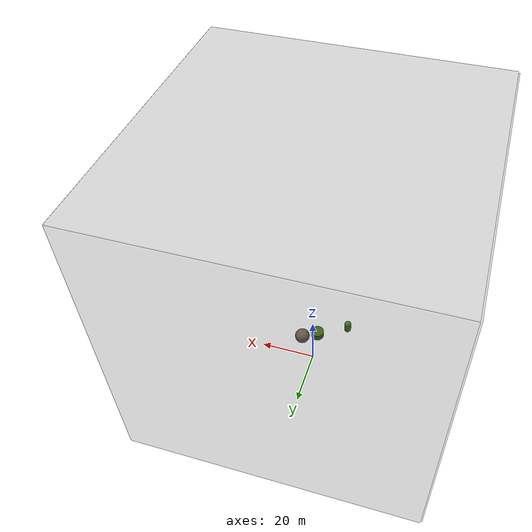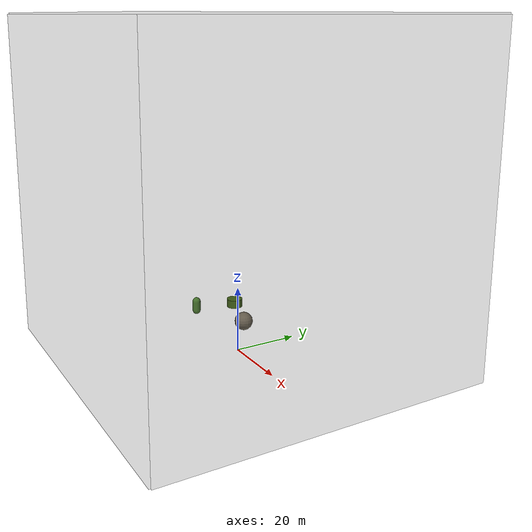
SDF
<!-- seed: 1719225684 -->
<sdf version='1.11'>
  <world name='world_0'>
    <gravity>0 0 -9.8066499999999994</gravity>
    <magnetic_field>5.5644999999999998e-06 2.2875799999999999e-05 -4.2388400000000002e-05</magnetic_field>
    <wind>
      <linear_velocity>10 4 4</linear_velocity>
    </wind>
    <physics name='physics' default='false' type='bullet'>
      <max_step_size>0.63171287832326173</max_step_size>
      <real_time_factor>2.3065947130988063</real_time_factor>
      <max_contacts>88</max_contacts>
    </physics>
    <model name='model_0'>
      <static>false</static>
      <self_collide>false</self_collide>
      <allow_auto_disable>true</allow_auto_disable>
      <enable_wind>true</enable_wind>
      <pose>-1.9860748776587549 -0.34138401124652518 5.4283076475673386 0 0 0</pose>
      <link name='link_2766'>
        <pose>-9.238951667904761 -8.1078865798224342 6.8802739759791116 0 0 0</pose>
        <inertial>
          <pose>0 0 0 0 0 0</pose>
          <mass>1</mass>
          <inertia>
            <ixx>1</ixx>
            <ixy>0</ixy>
            <ixz>0</ixz>
            <iyy>1</iyy>
            <iyz>0</iyz>
            <izz>1</izz>
          </inertia>
        </inertial>
        <enable_wind>false</enable_wind>
        <collision name='collision_2766'>
          <pose>0 0 0 0 0 0</pose>
          <geometry>
            <capsule>
              <radius>1.2118621030730345</radius>
              <length>2.8938118178007315</length>
            </capsule>
          </geometry>
          <surface>
            <contact>
              <collide_bitmask>255</collide_bitmask>
            </contact>
            <friction>
              <ode>
                <mu>1</mu>
                <mu2>1</mu2>
                <slip1>0</slip1>
                <slip2>0</slip2>
                <fdir1>0 0 0</fdir1>
              </ode>
            </friction>
          </surface>
        </collision>
        <visual name='visual_2766'>
          <pose>0 0 0 0 0 0</pose>
          <geometry>
            <capsule>
              <radius>1.2118621030730345</radius>
              <length>2.8938118178007315</length>
            </capsule>
          </geometry>
          <cast_shadows>true</cast_shadows>
          <laser_retro>0</laser_retro>
          <transparency>0</transparency>
          <visibility_flags>4294967295</visibility_flags>
          <material>
            <ambient>0.311028212 0.522084713 0.183882594 1</ambient>
            <diffuse>0.311028212 0.522084713 0.183882594 1</diffuse>
            <specular>0 0 0 1</specular>
            <emissive>0 0 0 1</emissive>
            <render_order>0</render_order>
            <lighting>true</lighting>
            <double_sided>false</double_sided>
            <shader type='pixel'/>
          </material>
        </visual>
      </link>
      <link name='link_2767'>
        <pose>0.28534835435404027 0.16844346873942939 9.6477831879669544 0 0 0</pose>
        <inertial>
          <pose>0 0 0 0 0 0</pose>
          <mass>1</mass>
          <inertia>
            <ixx>1</ixx>
            <ixy>0</ixy>
            <ixz>0</ixz>
            <iyy>1</iyy>
            <iyz>0</iyz>
            <izz>1</izz>
          </inertia>
        </inertial>
        <enable_wind>false</enable_wind>
        <collision name='collision_2767'>
          <pose>0 0 0 0 0 0</pose>
          <geometry>
            <cylinder>
              <radius>2.3256684102771641</radius>
              <length>2.3671492266296728</length>
            </cylinder>
          </geometry>
          <surface>
            <contact>
              <collide_bitmask>255</collide_bitmask>
            </contact>
            <friction>
              <ode>
                <mu>1</mu>
                <mu2>1</mu2>
                <slip1>0</slip1>
                <slip2>0</slip2>
                <fdir1>0 0 0</fdir1>
              </ode>
            </friction>
          </surface>
        </collision>
        <visual name='visual_2767'>
          <pose>0 0 0 0 0 0</pose>
          <geometry>
            <cylinder>
              <radius>2.3256684102771641</radius>
              <length>2.3671492266296728</length>
            </cylinder>
          </geometry>
          <cast_shadows>true</cast_shadows>
          <laser_retro>0</laser_retro>
          <transparency>0</transparency>
          <visibility_flags>4294967295</visibility_flags>
          <material>
            <ambient>0.280946463 0.426142454 0.0833514258 1</ambient>
            <diffuse>0.280946463 0.426142454 0.0833514258 1</diffuse>
            <specular>0 0 0 1</specular>
            <emissive>0 0 0 1</emissive>
            <render_order>0</render_order>
            <lighting>true</lighting>
            <double_sided>false</double_sided>
            <shader type='pixel'/>
          </material>
        </visual>
      </link>
      <link name='link_2768'>
        <pose>6.1698349107426189 0.0064248891464284696 5.7057387426074619 0 0 0</pose>
        <inertial>
          <pose>0 0 0 0 0 0</pose>
          <mass>1</mass>
          <inertia>
            <ixx>1</ixx>
            <ixy>0</ixy>
            <ixz>0</ixz>
            <iyy>1</iyy>
            <iyz>0</iyz>
            <izz>1</izz>
          </inertia>
        </inertial>
        <enable_wind>false</enable_wind>
        <collision name='collision_2768'>
          <pose>0 0 0 0 0 0</pose>
          <geometry>
            <sphere>
              <radius>2.6939385654149035</radius>
            </sphere>
          </geometry>
          <surface>
            <contact>
              <collide_bitmask>255</collide_bitmask>
            </contact>
            <friction>
              <ode>
                <mu>1</mu>
                <mu2>1</mu2>
                <slip1>0</slip1>
                <slip2>0</slip2>
                <fdir1>0 0 0</fdir1>
              </ode>
            </friction>
          </surface>
        </collision>
        <visual name='visual_2768'>
          <pose>0 0 0 0 0 0</pose>
          <geometry>
            <sphere>
              <radius>2.6939385654149035</radius>
            </sphere>
          </geometry>
          <cast_shadows>true</cast_shadows>
          <laser_retro>0</laser_retro>
          <transparency>0</transparency>
          <visibility_flags>4294967295</visibility_flags>
          <material>
            <ambient>0.464019477 0.422752708 0.349597961 1</ambient>
            <diffuse>0.464019477 0.422752708 0.349597961 1</diffuse>
            <specular>0 0 0 1</specular>
            <emissive>0 0 0 1</emissive>
            <render_order>0</render_order>
            <lighting>true</lighting>
            <double_sided>false</double_sided>
            <shader type='pixel'/>
          </material>
        </visual>
      </link>
      <joint name='joint_1844' type='screw'>
        <pose>0 0 0 0 0 0</pose>
        <parent>link_2767</parent>
        <child>link_2766</child>
        <axis>
          <xyz>0.74499642748947348 0.53419645163693952 0.39951780196434866</xyz>
          <limit>
            <lower>-inf</lower>
            <upper>inf</upper>
            <effort>inf</effort>
            <velocity>3.2429417984630704</velocity>
            <stiffness>100000000</stiffness>
            <dissipation>1</dissipation>
          </limit>
          <dynamics>
            <spring_reference>0</spring_reference>
            <spring_stiffness>0</spring_stiffness>
            <damping>0</damping>
            <friction>0</friction>
          </dynamics>
        </axis>
        <axis2>
          <xyz>0.67264378201400432 0.73805340211843928 0.053174412448976582</xyz>
          <limit>
            <lower>-inf</lower>
            <upper>inf</upper>
            <effort>inf</effort>
            <velocity>1.3873200382109274</velocity>
            <stiffness>100000000</stiffness>
            <dissipation>1</dissipation>
          </limit>
          <dynamics>
            <spring_reference>0</spring_reference>
            <spring_stiffness>0</spring_stiffness>
            <damping>0</damping>
            <friction>0</friction>
          </dynamics>
        </axis2>
        <thread_pitch>-6.2831853071795862</thread_pitch>
      </joint>
      <joint name='joint_1845' type='ball'>
        <pose>0 0 0 0 0 0</pose>
        <parent>link_2768</parent>
        <child>link_2767</child>
        <axis>
          <xyz>0.43246419016052196 0.54228925276299267 0.72034511906901888</xyz>
          <limit>
            <lower>-inf</lower>
            <upper>inf</upper>
            <effort>inf</effort>
            <velocity>3.3753092180743982</velocity>
            <stiffness>100000000</stiffness>
            <dissipation>1</dissipation>
          </limit>
          <dynamics>
            <spring_reference>0</spring_reference>
            <spring_stiffness>0</spring_stiffness>
            <damping>0</damping>
            <friction>0</friction>
          </dynamics>
        </axis>
        <axis2>
          <xyz>0.13526677785343769 0.97782397377773644 0.15988488081949834</xyz>
          <limit>
            <lower>-inf</lower>
            <upper>inf</upper>
            <effort>inf</effort>
            <velocity>9.9132412389652877</velocity>
            <stiffness>100000000</stiffness>
            <dissipation>1</dissipation>
          </limit>
          <dynamics>
            <spring_reference>0</spring_reference>
            <spring_stiffness>0</spring_stiffness>
            <damping>0</damping>
            <friction>0</friction>
          </dynamics>
        </axis2>
      </joint>
    </model>
    <model name='ground_model'>
      <static>true</static>
      <self_collide>false</self_collide>
      <allow_auto_disable>true</allow_auto_disable>
      <enable_wind>false</enable_wind>
      <pose>0 0 0 0 0 0</pose>
      <link name='ground_link'>
        <pose>0 0 0 0 0 0</pose>
        <inertial>
          <pose>0 0 0 0 0 0</pose>
          <mass>1</mass>
          <inertia>
            <ixx>1</ixx>
            <ixy>0</ixy>
            <ixz>0</ixz>
            <iyy>1</iyy>
            <iyz>0</iyz>
            <izz>1</izz>
          </inertia>
        </inertial>
        <enable_wind>false</enable_wind>
        <collision name='ground_collision'>
          <pose>0 0 0 0 0 0</pose>
          <geometry>
            <plane>
              <normal>0 0 1</normal>
              <size>100 100</size>
            </plane>
          </geometry>
          <surface>
            <contact>
              <collide_bitmask>255</collide_bitmask>
            </contact>
            <friction>
              <ode>
                <mu>1</mu>
                <mu2>1</mu2>
                <slip1>0</slip1>
                <slip2>0</slip2>
                <fdir1>0 0 0</fdir1>
              </ode>
            </friction>
          </surface>
        </collision>
      </link>
    </model>
    <model name='ceiling_model'>
      <static>true</static>
      <self_collide>false</self_collide>
      <allow_auto_disable>true</allow_auto_disable>
      <enable_wind>false</enable_wind>
      <pose>0 0 100 0 0 0</pose>
      <link name='ceiling_link'>
        <pose>0 0 0 0 0 0</pose>
        <inertial>
          <pose>0 0 0 0 0 0</pose>
          <mass>1</mass>
          <inertia>
            <ixx>1</ixx>
            <ixy>0</ixy>
            <ixz>0</ixz>
            <iyy>1</iyy>
            <iyz>0</iyz>
            <izz>1</izz>
          </inertia>
        </inertial>
        <enable_wind>false</enable_wind>
        <collision name='ceiling_collision'>
          <pose>0 0 0 0 0 0</pose>
          <geometry>
            <box>
              <size>102 102 3</size>
            </box>
          </geometry>
          <surface>
            <contact>
              <collide_bitmask>255</collide_bitmask>
            </contact>
            <friction>
              <ode>
                <mu>1</mu>
                <mu2>1</mu2>
                <slip1>0</slip1>
                <slip2>0</slip2>
                <fdir1>0 0 0</fdir1>
              </ode>
            </friction>
          </surface>
        </collision>
        <visual name='ceiling_visual'>
          <pose>0 0 0 0 0 0</pose>
          <geometry>
            <box>
              <size>102 102 3</size>
            </box>
          </geometry>
          <cast_shadows>true</cast_shadows>
          <laser_retro>0</laser_retro>
          <transparency>0</transparency>
          <visibility_flags>4294967295</visibility_flags>
          <material>
            <ambient>0.200000003 0.200000003 0.200000003 0.200000003</ambient>
            <diffuse>0.200000003 0.200000003 0.200000003 0.200000003</diffuse>
            <specular>0 0 0 1</specular>
            <emissive>0 0 0 1</emissive>
            <render_order>0</render_order>
            <lighting>true</lighting>
            <double_sided>false</double_sided>
            <shader type='pixel'/>
          </material>
        </visual>
      </link>
    </model>
    <model name='west_model'>
      <static>true</static>
      <self_collide>false</self_collide>
      <allow_auto_disable>true</allow_auto_disable>
      <enable_wind>false</enable_wind>
      <pose>0 50 50 0 0 0</pose>
      <link name='west_link'>
        <pose>0 0 0 0 0 0</pose>
        <inertial>
          <pose>0 0 0 0 0 0</pose>
          <mass>1</mass>
          <inertia>
            <ixx>1</ixx>
            <ixy>0</ixy>
            <ixz>0</ixz>
            <iyy>1</iyy>
            <iyz>0</iyz>
            <izz>1</izz>
          </inertia>
        </inertial>
        <enable_wind>false</enable_wind>
        <collision name='west_collision'>
          <pose>0 0 0 0 0 0</pose>
          <geometry>
            <box>
              <size>102 3 102</size>
            </box>
          </geometry>
          <surface>
            <contact>
              <collide_bitmask>255</collide_bitmask>
            </contact>
            <friction>
              <ode>
                <mu>1</mu>
                <mu2>1</mu2>
                <slip1>0</slip1>
                <slip2>0</slip2>
                <fdir1>0 0 0</fdir1>
              </ode>
            </friction>
          </surface>
        </collision>
        <visual name='west_visual'>
          <pose>0 0 0 0 0 0</pose>
          <geometry>
            <box>
              <size>102 3 102</size>
            </box>
          </geometry>
          <cast_shadows>true</cast_shadows>
          <laser_retro>0</laser_retro>
          <transparency>0</transparency>
          <visibility_flags>4294967295</visibility_flags>
          <material>
            <ambient>0.200000003 0.200000003 0.200000003 0.200000003</ambient>
            <diffuse>0.200000003 0.200000003 0.200000003 0.200000003</diffuse>
            <specular>0 0 0 1</specular>
            <emissive>0 0 0 1</emissive>
            <render_order>0</render_order>
            <lighting>true</lighting>
            <double_sided>false</double_sided>
            <shader type='pixel'/>
          </material>
        </visual>
      </link>
    </model>
    <model name='east_model'>
      <static>true</static>
      <self_collide>false</self_collide>
      <allow_auto_disable>true</allow_auto_disable>
      <enable_wind>false</enable_wind>
      <pose>0 -50 50 0 0 0</pose>
      <link name='east_link'>
        <pose>0 0 0 0 0 0</pose>
        <inertial>
          <pose>0 0 0 0 0 0</pose>
          <mass>1</mass>
          <inertia>
            <ixx>1</ixx>
            <ixy>0</ixy>
            <ixz>0</ixz>
            <iyy>1</iyy>
            <iyz>0</iyz>
            <izz>1</izz>
          </inertia>
        </inertial>
        <enable_wind>false</enable_wind>
        <collision name='east_collision'>
          <pose>0 0 0 0 0 0</pose>
          <geometry>
            <box>
              <size>102 3 102</size>
            </box>
          </geometry>
          <surface>
            <contact>
              <collide_bitmask>255</collide_bitmask>
            </contact>
            <friction>
              <ode>
                <mu>1</mu>
                <mu2>1</mu2>
                <slip1>0</slip1>
                <slip2>0</slip2>
                <fdir1>0 0 0</fdir1>
              </ode>
            </friction>
          </surface>
        </collision>
        <visual name='east_visual'>
          <pose>0 0 0 0 0 0</pose>
          <geometry>
            <box>
              <size>102 3 102</size>
            </box>
          </geometry>
          <cast_shadows>true</cast_shadows>
          <laser_retro>0</laser_retro>
          <transparency>0</transparency>
          <visibility_flags>4294967295</visibility_flags>
          <material>
            <ambient>0.200000003 0.200000003 0.200000003 0.200000003</ambient>
            <diffuse>0.200000003 0.200000003 0.200000003 0.200000003</diffuse>
            <specular>0 0 0 1</specular>
            <emissive>0 0 0 1</emissive>
            <render_order>0</render_order>
            <lighting>true</lighting>
            <double_sided>false</double_sided>
            <shader type='pixel'/>
          </material>
        </visual>
      </link>
    </model>
    <model name='north_model'>
      <static>true</static>
      <self_collide>false</self_collide>
      <allow_auto_disable>true</allow_auto_disable>
      <enable_wind>false</enable_wind>
      <pose>50 0 50 0 0 0</pose>
      <link name='north_link'>
        <pose>0 0 0 0 0 0</pose>
        <inertial>
          <pose>0 0 0 0 0 0</pose>
          <mass>1</mass>
          <inertia>
            <ixx>1</ixx>
            <ixy>0</ixy>
            <ixz>0</ixz>
            <iyy>1</iyy>
            <iyz>0</iyz>
            <izz>1</izz>
          </inertia>
        </inertial>
        <enable_wind>false</enable_wind>
        <collision name='north_collision'>
          <pose>0 0 0 0 0 0</pose>
          <geometry>
            <box>
              <size>3 102 102</size>
            </box>
          </geometry>
          <surface>
            <contact>
              <collide_bitmask>255</collide_bitmask>
            </contact>
            <friction>
              <ode>
                <mu>1</mu>
                <mu2>1</mu2>
                <slip1>0</slip1>
                <slip2>0</slip2>
                <fdir1>0 0 0</fdir1>
              </ode>
            </friction>
          </surface>
        </collision>
        <visual name='north_visual'>
          <pose>0 0 0 0 0 0</pose>
          <geometry>
            <box>
              <size>3 102 102</size>
            </box>
          </geometry>
          <cast_shadows>true</cast_shadows>
          <laser_retro>0</laser_retro>
          <transparency>0</transparency>
          <visibility_flags>4294967295</visibility_flags>
          <material>
            <ambient>0.200000003 0.200000003 0.200000003 0.200000003</ambient>
            <diffuse>0.200000003 0.200000003 0.200000003 0.200000003</diffuse>
            <specular>0 0 0 1</specular>
            <emissive>0 0 0 1</emissive>
            <render_order>0</render_order>
            <lighting>true</lighting>
            <double_sided>false</double_sided>
            <shader type='pixel'/>
          </material>
        </visual>
      </link>
    </model>
    <model name='south_model'>
      <static>true</static>
      <self_collide>false</self_collide>
      <allow_auto_disable>true</allow_auto_disable>
      <enable_wind>false</enable_wind>
      <pose>-50 0 50 0 0 0</pose>
      <link name='south_link'>
        <pose>0 0 0 0 0 0</pose>
        <inertial>
          <pose>0 0 0 0 0 0</pose>
          <mass>1</mass>
          <inertia>
            <ixx>1</ixx>
            <ixy>0</ixy>
            <ixz>0</ixz>
            <iyy>1</iyy>
            <iyz>0</iyz>
            <izz>1</izz>
          </inertia>
        </inertial>
        <enable_wind>false</enable_wind>
        <collision name='south_collision'>
          <pose>0 0 0 0 0 0</pose>
          <geometry>
            <box>
              <size>3 102 102</size>
            </box>
          </geometry>
          <surface>
            <contact>
              <collide_bitmask>255</collide_bitmask>
            </contact>
            <friction>
              <ode>
                <mu>1</mu>
                <mu2>1</mu2>
                <slip1>0</slip1>
                <slip2>0</slip2>
                <fdir1>0 0 0</fdir1>
              </ode>
            </friction>
          </surface>
        </collision>
        <visual name='south_visual'>
          <pose>0 0 0 0 0 0</pose>
          <geometry>
            <box>
              <size>3 102 102</size>
            </box>
          </geometry>
          <cast_shadows>true</cast_shadows>
          <laser_retro>0</laser_retro>
          <transparency>0</transparency>
          <visibility_flags>4294967295</visibility_flags>
          <material>
            <ambient>0.200000003 0.200000003 0.200000003 0.200000003</ambient>
            <diffuse>0.200000003 0.200000003 0.200000003 0.200000003</diffuse>
            <specular>0 0 0 1</specular>
            <emissive>0 0 0 1</emissive>
            <render_order>0</render_order>
            <lighting>true</lighting>
            <double_sided>false</double_sided>
            <shader type='pixel'/>
          </material>
        </visual>
      </link>
    </model>
    <atmosphere type='adiabatic'>
      <temperature>288.14999999999998</temperature>
      <pressure>101325</pressure>
      <temperature_gradient>-0.0064999999999999997</temperature_gradient>
    </atmosphere>
    <scene>
      <ambient>0.400000006 0.400000006 0.400000006 1</ambient>
      <background>0.699999988 0.699999988 0.699999988 1</background>
      <grid>true</grid>
      <origin_visual>true</origin_visual>
      <shadows>true</shadows>
    </scene>
  </world>
</sdf>
